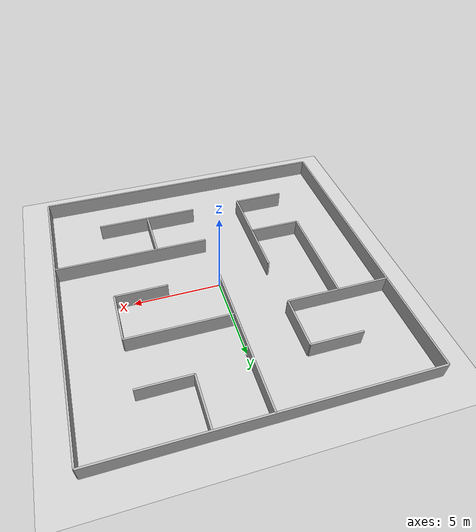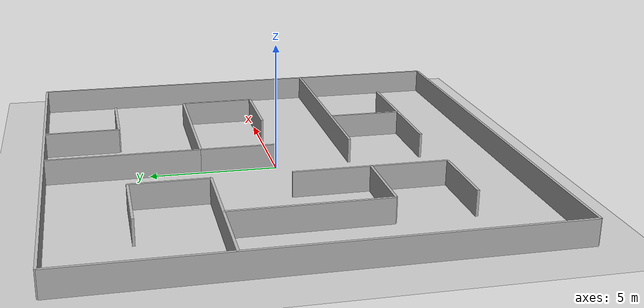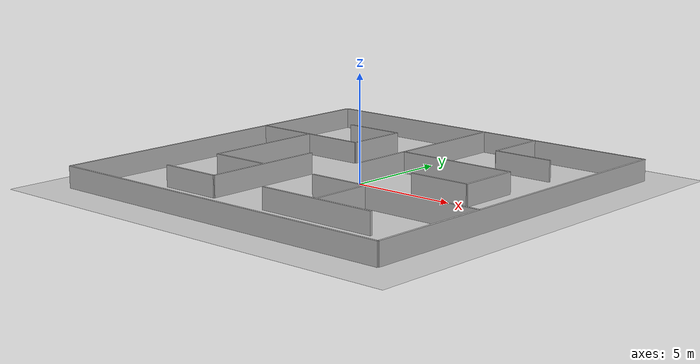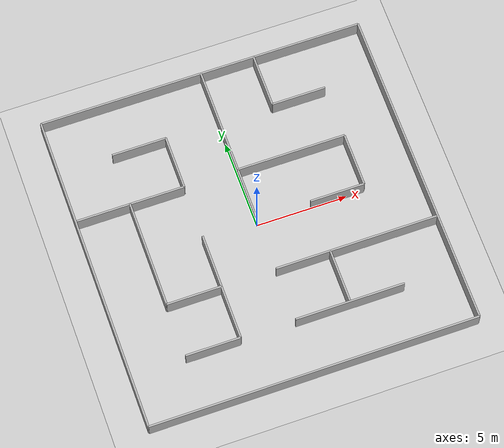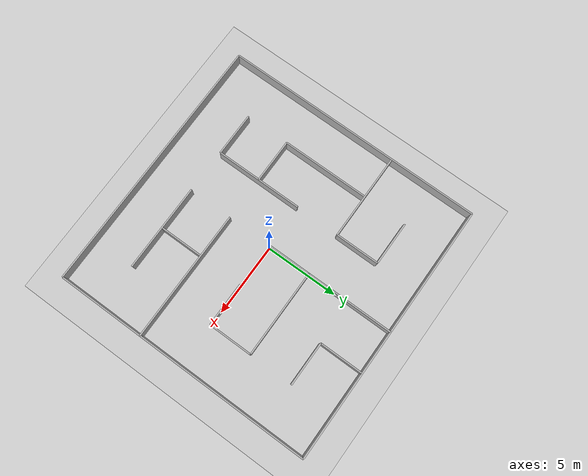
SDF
<?xml version="1.0" ?>
<sdf version="1.6">
  <world name="maze_world">

    <plugin name="gazebo_ros_state" filename="libgazebo_ros_state.so">
      <ros>
        <namespace>/test</namespace>
        <argument>model_states:=model_states_demo</argument>
      </ros>
      <update_rate>1.0</update_rate>
    </plugin>
    <include>
      <uri>model://ground_plane</uri>
    </include>
    <include>
      <uri>model://sun</uri>
    </include>

    <!-- ===== OUTER BOUNDARY (closed maze) ===== -->
    <model name="wall_outer_bottom">
      <static>true</static>
      <pose>0 -9 0.5 0 0 0</pose>
      <link name="link">
        <collision name="collision">
          <geometry><box><size>18 0.1 1</size></box></geometry>
        </collision>
        <visual name="visual">
          <geometry><box><size>18 0.1 1</size></box></geometry>
        </visual>
      </link>
    </model>

    <model name="wall_outer_top">
      <static>true</static>
      <pose>0 9 0.5 0 0 0</pose>
      <link name="link">
        <collision name="collision"><geometry><box><size>18 0.1 1</size></box></geometry></collision>
        <visual name="visual"><geometry><box><size>18 0.1 1</size></box></geometry></visual>
      </link>
    </model>

    <model name="wall_outer_left">
      <static>true</static>
      <pose>-9 0 0.5 0 0 0</pose>
      <link name="link">
        <collision name="collision"><geometry><box><size>0.1 18 1</size></box></geometry></collision>
        <visual name="visual"><geometry><box><size>0.1 18 1</size></box></geometry></visual>
      </link>
    </model>

    <model name="wall_outer_right">
      <static>true</static>
      <pose>9 0 0.5 0 0 0</pose>
      <link name="link">
        <collision name="collision"><geometry><box><size>0.1 18 1</size></box></geometry></collision>
        <visual name="visual"><geometry><box><size>0.1 18 1</size></box></geometry></visual>
      </link>
    </model>

    <!-- ===== INNER MAZE WALLS (based on provided image) ===== -->

    <!-- Top-left structure -->
    <model name="wall_tl_1"><static>true</static><pose>-6 3 0.5 0 0 0</pose><link name="l"><collision name="c"><geometry><box><size>6 0.1 1</size></box></geometry></collision><visual name="v"><geometry><box><size>6 0.1 1</size></box></geometry></visual></link></model>
    <model name="wall_tl_2"><static>true</static><pose>-3 4.5 0.5 0 0 0</pose><link name="l"><collision name="c"><geometry><box><size>0.1 3 1</size></box></geometry></collision><visual name="v"><geometry><box><size>0.1 3 1</size></box></geometry></visual></link></model>
    <model name="wall_tl_3"><static>true</static><pose>-4.5 6 0.5 0 0 0</pose><link name="l"><collision name="c"><geometry><box><size>3 0.1 1</size></box></geometry></collision><visual name="v"><geometry><box><size>3 0.1 1</size></box></geometry></visual></link></model>

    <!-- Top-right structure -->
    <model name="wall_tr_1"><static>true</static><pose>3 3 0.5 0 0 0</pose><link name="l"><collision name="c"><geometry><box><size>6 0.1 1</size></box></geometry></collision><visual name="v"><geometry><box><size>6 0.1 1</size></box></geometry></visual></link></model>
    <model name="wall_tr_2"><static>true</static><pose>0 6 0.5 0 0 0</pose><link name="l"><collision name="c"><geometry><box><size>0.1 6 1</size></box></geometry></collision><visual name="v"><geometry><box><size>0.1 6 1</size></box></geometry></visual></link></model>
    <model name="wall_tr_3"><static>true</static><pose>4.5 0 0.5 0 0 0</pose><link name="l"><collision name="c"><geometry><box><size>3 0.1 1</size></box></geometry></collision><visual name="v"><geometry><box><size>3 0.1 1</size></box></geometry></visual></link></model>
    <model name="wall_tr_4"><static>true</static><pose>4.5 6 0.5 0 0 0</pose><link name="l"><collision name="c"><geometry><box><size>3 0.1 1</size></box></geometry></collision><visual name="v"><geometry><box><size>3 0.1 1</size></box></geometry></visual></link></model>
    <model name="wall_tr_5"><static>true</static><pose>3 7.5 0.5 0 0 0</pose><link name="l"><collision name="c"><geometry><box><size>0.1 3 1</size></box></geometry></collision><visual name="v"><geometry><box><size>0.1 3 1</size></box></geometry></visual></link></model>
    <model name="wall_tr_6"><static>true</static><pose>6 1.5 0.5 0 0 0</pose><link name="l"><collision name="c"><geometry><box><size>0.1 3 1</size></box></geometry></collision><visual name="v"><geometry><box><size>0.1 3 1</size></box></geometry></visual></link></model>
    <model name="wall_tr_7"><static>true</static><pose>0 1.5 0.5 0 0 0</pose><link name="l"><collision name="c"><geometry><box><size>0.1 3 1</size></box></geometry></collision><visual name="v"><geometry><box><size>0.1 3 1</size></box></geometry></visual></link></model>

    <!-- Bottom-left structure -->
    <model name="wall_bl_1"><static>true</static><pose>-6 0 0.5 0 0 0</pose><link name="l"><collision name="c"><geometry><box><size>0.1 6 1</size></box></geometry></collision><visual name="v"><geometry><box><size>0.1 6 1</size></box></geometry></visual></link></model>
    <model name="wall_bl_2"><static>true</static><pose>-4.5 -3 0.5 0 0 0</pose><link name="l"><collision name="c"><geometry><box><size>3 0.1 1</size></box></geometry></collision><visual name="v"><geometry><box><size>3 0.1 1</size></box></geometry></visual></link></model>
    <model name="wall_bl_3"><static>true</static><pose>-3 -3 0.5 0 0 0</pose><link name="l"><collision name="c"><geometry><box><size>0.1 6 1</size></box></geometry></collision><visual name="v"><geometry><box><size>0.1 6 1</size></box></geometry></visual></link></model>
    <model name="wall_bl_4"><static>true</static><pose>-4.5 -6 0.5 0 0 0</pose><link name="l"><collision name="c"><geometry><box><size>3 0.1 1</size></box></geometry></collision><visual name="v"><geometry><box><size>3 0.1 1</size></box></geometry></visual></link></model>

    <!-- Bottom-right structure -->
    <model name="wall_br_1"><static>true</static><pose>4.5 -3 0.5 0 0 0</pose><link name="l"><collision name="c"><geometry><box><size>9 0.1 1</size></box></geometry></collision><visual name="v"><geometry><box><size>9 0.1 1</size></box></geometry></visual></link></model>
    <model name="wall_br_2"><static>true</static><pose>3 -6 0.5 0 0 0</pose><link name="l"><collision name="c"><geometry><box><size>6 0.1 1</size></box></geometry></collision><visual name="v"><geometry><box><size>6 0.1 1</size></box></geometry></visual></link></model>
    <model name="wall_br_4"><static>true</static><pose>3 -4.5 0.5 0 0 0</pose><link name="l"><collision name="c"><geometry><box><size>0.1 3 1</size></box></geometry></collision><visual name="v"><geometry><box><size>0.1 3 1</size></box></geometry></visual></link></model>

    <!-- Center obstacle -->
  </world>
</sdf>
